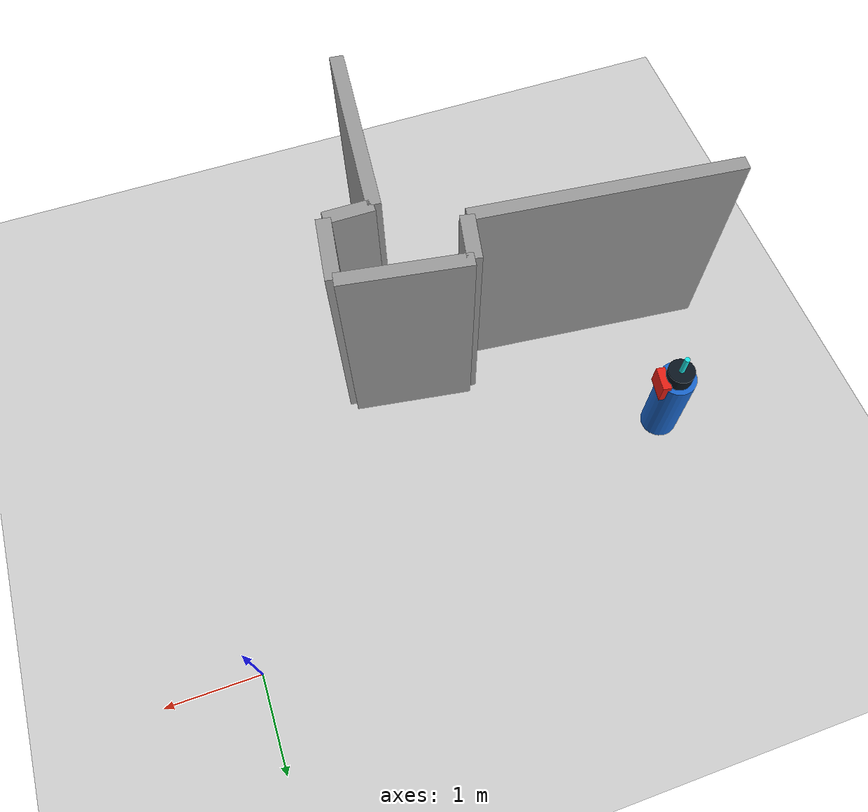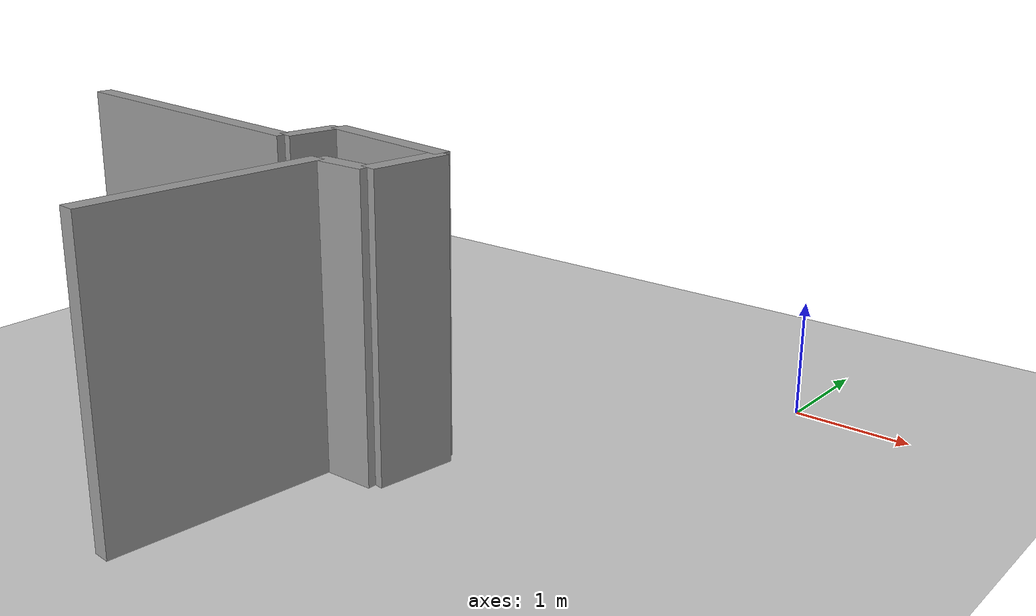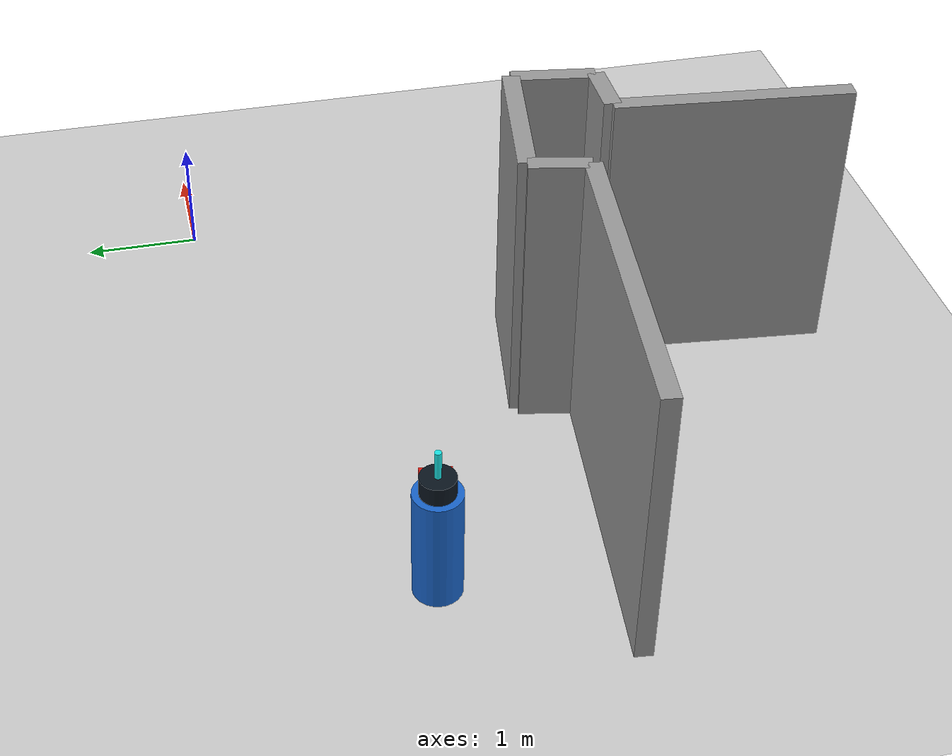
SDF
<sdf version="1.7">
 <world name="default">
  <plugin name="socnav_plugin" filename="libSocNavPlugin.so">
   <robot_name>robot</robot_name>
   <trajectory_file>/home/hunav_gz_classic_ws/SocNav3_trajectories/src3/000001048.json</trajectory_file>
   <human_slots>3</human_slots>
  </plugin>
  <light name="sun" type="directional">
   <pose>0 0 10 0 -0 0</pose>
   <diffuse>0.8 0.8 0.8 1</diffuse>
   <specular>0.2 0.2 0.2 1</specular>
   <attenuation>
    <range>1000</range>
    <constant>0.9</constant>
    <linear>0.01</linear>
    <quadratic>0.001</quadratic>
   </attenuation>
   <direction>-0.5 0.1 -0.9</direction>
   <spot><inner_angle>0</inner_angle><outer_angle>0</outer_angle><falloff>0</falloff></spot>
  </light>
  <model name="ground_plane">
   <static>1</static>
   <link name="link">
    <collision name="collision">
     <geometry><plane><normal>0 0 1</normal><size>100 100</size></plane></geometry>
     <surface><friction><ode><mu>100</mu><mu2>50</mu2></ode></friction></surface>
    </collision>
    <visual name="visual">
     <cast_shadows>0</cast_shadows>
     <geometry><plane><normal>0 0 1</normal><size>100 100</size></plane></geometry>
     <material>
      <script><uri>file://media/materials/scripts/kitchen.material</uri><name>Kitchen/CounterTop_H</name></script>
     </material>
    </visual>
   </link>
  </model>
  <gravity>0 0 -9.8</gravity>
  <magnetic_field>6e-06 2.3e-05 -4.2e-05</magnetic_field>
  <atmosphere type="adiabatic"/>
  <physics type="ode">
   <max_step_size>0.001</max_step_size>
   <real_time_factor>1</real_time_factor>
   <real_time_update_rate>1000</real_time_update_rate>
  </physics>
  <scene><ambient>0.4 0.4 0.4 1</ambient><background>0.7 0.7 0.7 1</background><shadows>1</shadows></scene>
  <audio><device>default</device></audio>
  <spherical_coordinates>
   <surface_model>EARTH_WGS84</surface_model>
   <latitude_deg>0</latitude_deg>
   <longitude_deg>0</longitude_deg>
   <elevation>0</elevation>
   <heading_deg>0</heading_deg>
  </spherical_coordinates>
  <model name="robot">
   <pose>-4.975280967034418 -1.2973559630192117 0.5 0 0 -0.13606132408392205</pose>
   <link name="link">
    <collision name="collision">
     <geometry><cylinder><radius>0.2</radius><length>1.0</length></cylinder></geometry>
    </collision>
    <visual name="visual">
     <geometry><cylinder><radius>0.2</radius><length>1.0</length></cylinder></geometry>
     <material><ambient>0.1 0.4 0.8 1</ambient><diffuse>0.1 0.4 0.8 1</diffuse></material>
    </visual>
    <visual name="robot_top">
     <pose>0 0 0.58 0 0 0</pose>
     <geometry><cylinder><radius>0.144</radius><length>0.16</length></cylinder></geometry>
     <material><ambient>0.04 0.08 0.12 1</ambient><diffuse>0.04 0.08 0.12 1</diffuse></material>
    </visual>
    <visual name="robot_front">
     <pose>0.168 0 0.44 0 0 0</pose>
     <geometry><box><size>0.096 0.256 0.24</size></box></geometry>
     <material><ambient>0.9 0.12 0.08 1</ambient><diffuse>0.9 0.12 0.08 1</diffuse></material>
    </visual>
    <visual name="robot_sensor">
     <pose>0 0 0.78 0 0 0</pose>
     <geometry><cylinder><radius>0.028000000000000004</radius><length>0.24</length></cylinder></geometry>
     <material><ambient>0.1 0.9 0.9 1</ambient><diffuse>0.1 0.9 0.9 1</diffuse></material>
    </visual>
   </link>
  </model>
  <model name="simple_world_test">
   <link name="Wall_0">
    <collision name="Wall_0_Collision">
     <geometry><box><size>2.820996421702315 0.15 2.5</size></box></geometry>
     <pose>0 0 1.25 0 -0 0</pose>
    </collision>
    <visual name="Wall_0_Visual">
     <pose>0 0 1.25 0 -0 0</pose>
     <geometry><box><size>2.820996421702315 0.15 2.5</size></box></geometry>
     <material>
      <script><uri>file://media/materials/scripts/gazebo.material</uri><name>Gazebo/Grey</name></script>
      <ambient>1 1 1 1</ambient>
     </material>
     <meta><layer>0</layer></meta>
    </visual>
    <pose>-4.572418498333601 -2.7771996798398355 0 0 -0 -0.1040999381095994</pose>
   </link>
   <link name="Wall_1">
    <collision name="Wall_1_Collision">
     <geometry><box><size>0.5099019513592785 0.15 2.5</size></box></geometry>
     <pose>0 0 1.25 0 -0 0</pose>
    </collision>
    <visual name="Wall_1_Visual">
     <pose>0 0 1.25 0 -0 0</pose>
     <geometry><box><size>0.5099019513592785 0.15 2.5</size></box></geometry>
     <material>
      <script><uri>file://media/materials/scripts/gazebo.material</uri><name>Gazebo/Grey</name></script>
      <ambient>1 1 1 1</ambient>
     </material>
     <meta><layer>0</layer></meta>
    </visual>
    <pose>-3.1195560296327844 -2.6737674004503686 0 0 -0 1.3734007669450157</pose>
   </link>
   <link name="Wall_2">
    <collision name="Wall_2_Collision">
     <geometry><box><size>1.3152946437965904 0.15 2.5</size></box></geometry>
     <pose>0 0 1.25 0 -0 0</pose>
    </collision>
    <visual name="Wall_2_Visual">
     <pose>0 0 1.25 0 -0 0</pose>
     <geometry><box><size>1.3152946437965904 0.15 2.5</size></box></geometry>
     <material>
      <script><uri>file://media/materials/scripts/gazebo.material</uri><name>Gazebo/Grey</name></script>
      <ambient>1 1 1 1</ambient>
     </material>
     <meta><layer>0</layer></meta>
    </visual>
    <pose>-2.4195560296327847 -2.5237674004503687 0 0 -0 -0.15264932839526532</pose>
   </link>
   <link name="Wall_3">
    <collision name="Wall_3_Collision">
     <geometry><box><size>0.7071067811865472 0.15 2.5</size></box></geometry>
     <pose>0 0 1.25 0 -0 0</pose>
    </collision>
    <visual name="Wall_3_Visual">
     <pose>0 0 1.25 0 -0 0</pose>
     <geometry><box><size>0.7071067811865472 0.15 2.5</size></box></geometry>
     <material>
      <script><uri>file://media/materials/scripts/gazebo.material</uri><name>Gazebo/Grey</name></script>
      <ambient>1 1 1 1</ambient>
     </material>
     <meta><layer>0</layer></meta>
    </visual>
    <pose>-1.8195560296327846 -2.9737674004503685 0 0 -0 -1.7126933813990601</pose>
   </link>
   <link name="Wall_4">
    <collision name="Wall_4_Collision">
     <geometry><box><size>0.5 0.15 2.5</size></box></geometry>
     <pose>0 0 1.25 0 -0 0</pose>
    </collision>
    <visual name="Wall_4_Visual">
     <pose>0 0 1.25 0 -0 0</pose>
     <geometry><box><size>0.5 0.15 2.5</size></box></geometry>
     <material>
      <script><uri>file://media/materials/scripts/gazebo.material</uri><name>Gazebo/Grey</name></script>
      <ambient>1 1 1 1</ambient>
     </material>
     <meta><layer>0</layer></meta>
    </visual>
    <pose>-2.1195560296327844 -3.3237674004503686 0 0 -0 3.141592653589793</pose>
   </link>
   <link name="Wall_5">
    <collision name="Wall_5_Collision">
     <geometry><box><size>2.0099751242241775 0.15 2.5</size></box></geometry>
     <pose>0 0 1.25 0 -0 0</pose>
    </collision>
    <visual name="Wall_5_Visual">
     <pose>0 0 1.25 0 -0 0</pose>
     <geometry><box><size>2.0099751242241775 0.15 2.5</size></box></geometry>
     <material>
      <script><uri>file://media/materials/scripts/gazebo.material</uri><name>Gazebo/Grey</name></script>
      <ambient>1 1 1 1</ambient>
     </material>
     <meta><layer>0</layer></meta>
    </visual>
    <pose>-2.4695560296327845 -4.323767400450368 0 0 -0 -1.6704649792860589</pose>
   </link>
   <static>1</static>
  </model>
 </world>
</sdf>
